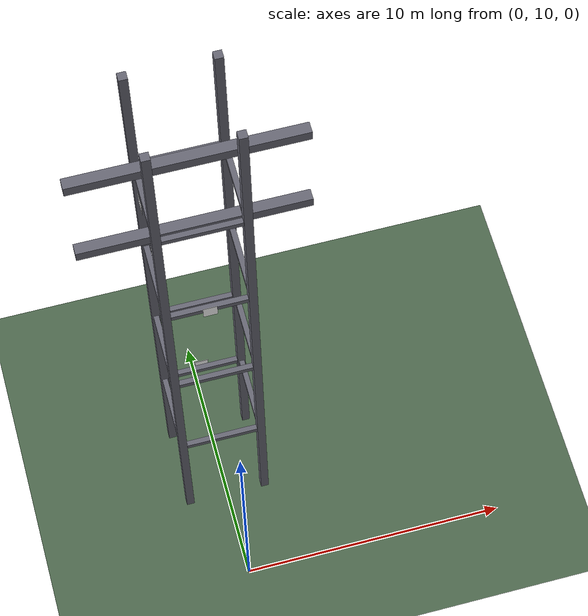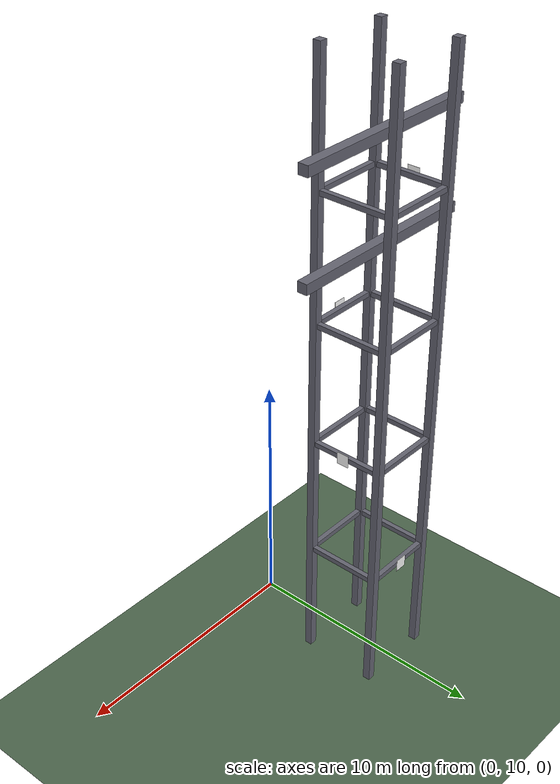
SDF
<sdf version="1.9">
 <world name="pylon_world">
  <physics name="1ms" type="ignore">
   <max_step_size>0.001</max_step_size>
   <real_time_factor>1.0</real_time_factor>
  </physics>
  <plugin filename="gz-sim-physics-system" name="gz::sim::systems::Physics"/>
  <plugin filename="gz-sim-sensors-system" name="gz::sim::systems::Sensors">
   <render_engine>ogre2</render_engine>
  </plugin>
  <plugin filename="gz-sim-user-commands-system" name="gz::sim::systems::UserCommands"/>
  <plugin filename="gz-sim-scene-broadcaster-system" name="gz::sim::systems::SceneBroadcaster"/>
  <plugin filename="gz-sim-imu-system" name="gz::sim::systems::Imu"/>
  <plugin filename="gz-sim-navsat-system" name="gz::sim::systems::NavSat"/>
  <scene><ambient>1.0 1.0 1.0</ambient><background>0.8 0.8 0.9</background></scene>
  <spherical_coordinates>
   <latitude_deg>-35.363262</latitude_deg>
   <longitude_deg>149.165237</longitude_deg>
   <elevation>584</elevation>
   <heading_deg>0</heading_deg>
   <surface_model>EARTH_WGS84</surface_model>
  </spherical_coordinates>
  <light type="directional" name="sun">
   <pose>0 0 10 0 0 0</pose>
   <diffuse>0.8 0.8 0.8 1</diffuse>
   <specular>0.8 0.8 0.8 1</specular>
   <attenuation>
    <range>1000</range>
    <constant>0.9</constant>
    <linear>0.01</linear>
    <quadratic>0.001</quadratic>
   </attenuation>
   <direction>-0.5 0.1 -0.9</direction>
  </light>
  <model name="ground_plane">
   <static>true</static>
   <link name="link">
    <collision name="collision">
     <geometry><plane><normal>0 0 1</normal><size>200 200</size></plane></geometry>
    </collision>
    <visual name="visual">
     <geometry><plane><normal>0 0 1</normal><size>200 200</size></plane></geometry>
     <material><ambient>0.3 0.4 0.3 1</ambient><diffuse>0.3 0.4 0.3 1</diffuse></material>
    </visual>
   </link>
  </model>
  <model name="pylon">
   <static>true</static>
   <pose>0 15 0 0 0 0</pose>
   <link name="frame">
    <collision name="leg_ne_col">
     <pose>1.5 1.5 12.5 0 0 0</pose>
     <geometry><box><size>0.3 0.3 25</size></box></geometry>
    </collision>
    <visual name="leg_ne_vis">
     <pose>1.5 1.5 12.5 0 0 0</pose>
     <geometry><box><size>0.3 0.3 25</size></box></geometry>
     <material><ambient>0.4 0.4 0.45 1</ambient><diffuse>0.4 0.4 0.45 1</diffuse></material>
    </visual>
    <collision name="leg_nw_col">
     <pose>-1.5 1.5 12.5 0 0 0</pose>
     <geometry><box><size>0.3 0.3 25</size></box></geometry>
    </collision>
    <visual name="leg_nw_vis">
     <pose>-1.5 1.5 12.5 0 0 0</pose>
     <geometry><box><size>0.3 0.3 25</size></box></geometry>
     <material><ambient>0.4 0.4 0.45 1</ambient><diffuse>0.4 0.4 0.45 1</diffuse></material>
    </visual>
    <collision name="leg_se_col">
     <pose>1.5 -1.5 12.5 0 0 0</pose>
     <geometry><box><size>0.3 0.3 25</size></box></geometry>
    </collision>
    <visual name="leg_se_vis">
     <pose>1.5 -1.5 12.5 0 0 0</pose>
     <geometry><box><size>0.3 0.3 25</size></box></geometry>
     <material><ambient>0.4 0.4 0.45 1</ambient><diffuse>0.4 0.4 0.45 1</diffuse></material>
    </visual>
    <collision name="leg_sw_col">
     <pose>-1.5 -1.5 12.5 0 0 0</pose>
     <geometry><box><size>0.3 0.3 25</size></box></geometry>
    </collision>
    <visual name="leg_sw_vis">
     <pose>-1.5 -1.5 12.5 0 0 0</pose>
     <geometry><box><size>0.3 0.3 25</size></box></geometry>
     <material><ambient>0.4 0.4 0.45 1</ambient><diffuse>0.4 0.4 0.45 1</diffuse></material>
    </visual>
    <collision name="brace_yp_5_col">
     <pose>0 1.5 5 0 0 0</pose>
     <geometry><box><size>3.0 0.2 0.2</size></box></geometry>
    </collision>
    <visual name="brace_yp_5_vis">
     <pose>0 1.5 5 0 0 0</pose>
     <geometry><box><size>3.0 0.2 0.2</size></box></geometry>
     <material><ambient>0.4 0.4 0.45 1</ambient><diffuse>0.4 0.4 0.45 1</diffuse></material>
    </visual>
    <collision name="brace_yn_5_col">
     <pose>0 -1.5 5 0 0 0</pose>
     <geometry><box><size>3.0 0.2 0.2</size></box></geometry>
    </collision>
    <visual name="brace_yn_5_vis">
     <pose>0 -1.5 5 0 0 0</pose>
     <geometry><box><size>3.0 0.2 0.2</size></box></geometry>
     <material><ambient>0.4 0.4 0.45 1</ambient><diffuse>0.4 0.4 0.45 1</diffuse></material>
    </visual>
    <collision name="brace_xp_5_col">
     <pose>1.5 0 5 0 0 0</pose>
     <geometry><box><size>0.2 3.0 0.2</size></box></geometry>
    </collision>
    <visual name="brace_xp_5_vis">
     <pose>1.5 0 5 0 0 0</pose>
     <geometry><box><size>0.2 3.0 0.2</size></box></geometry>
     <material><ambient>0.4 0.4 0.45 1</ambient><diffuse>0.4 0.4 0.45 1</diffuse></material>
    </visual>
    <collision name="brace_xn_5_col">
     <pose>-1.5 0 5 0 0 0</pose>
     <geometry><box><size>0.2 3.0 0.2</size></box></geometry>
    </collision>
    <visual name="brace_xn_5_vis">
     <pose>-1.5 0 5 0 0 0</pose>
     <geometry><box><size>0.2 3.0 0.2</size></box></geometry>
     <material><ambient>0.4 0.4 0.45 1</ambient><diffuse>0.4 0.4 0.45 1</diffuse></material>
    </visual>
    <collision name="brace_yp_10_col">
     <pose>0 1.5 10 0 0 0</pose>
     <geometry><box><size>3.0 0.2 0.2</size></box></geometry>
    </collision>
    <visual name="brace_yp_10_vis">
     <pose>0 1.5 10 0 0 0</pose>
     <geometry><box><size>3.0 0.2 0.2</size></box></geometry>
     <material><ambient>0.4 0.4 0.45 1</ambient><diffuse>0.4 0.4 0.45 1</diffuse></material>
    </visual>
    <collision name="brace_yn_10_col">
     <pose>0 -1.5 10 0 0 0</pose>
     <geometry><box><size>3.0 0.2 0.2</size></box></geometry>
    </collision>
    <visual name="brace_yn_10_vis">
     <pose>0 -1.5 10 0 0 0</pose>
     <geometry><box><size>3.0 0.2 0.2</size></box></geometry>
     <material><ambient>0.4 0.4 0.45 1</ambient><diffuse>0.4 0.4 0.45 1</diffuse></material>
    </visual>
    <collision name="brace_xp_10_col">
     <pose>1.5 0 10 0 0 0</pose>
     <geometry><box><size>0.2 3.0 0.2</size></box></geometry>
    </collision>
    <visual name="brace_xp_10_vis">
     <pose>1.5 0 10 0 0 0</pose>
     <geometry><box><size>0.2 3.0 0.2</size></box></geometry>
     <material><ambient>0.4 0.4 0.45 1</ambient><diffuse>0.4 0.4 0.45 1</diffuse></material>
    </visual>
    <collision name="brace_xn_10_col">
     <pose>-1.5 0 10 0 0 0</pose>
     <geometry><box><size>0.2 3.0 0.2</size></box></geometry>
    </collision>
    <visual name="brace_xn_10_vis">
     <pose>-1.5 0 10 0 0 0</pose>
     <geometry><box><size>0.2 3.0 0.2</size></box></geometry>
     <material><ambient>0.4 0.4 0.45 1</ambient><diffuse>0.4 0.4 0.45 1</diffuse></material>
    </visual>
    <collision name="brace_yp_15_col">
     <pose>0 1.5 15 0 0 0</pose>
     <geometry><box><size>3.0 0.2 0.2</size></box></geometry>
    </collision>
    <visual name="brace_yp_15_vis">
     <pose>0 1.5 15 0 0 0</pose>
     <geometry><box><size>3.0 0.2 0.2</size></box></geometry>
     <material><ambient>0.4 0.4 0.45 1</ambient><diffuse>0.4 0.4 0.45 1</diffuse></material>
    </visual>
    <collision name="brace_yn_15_col">
     <pose>0 -1.5 15 0 0 0</pose>
     <geometry><box><size>3.0 0.2 0.2</size></box></geometry>
    </collision>
    <visual name="brace_yn_15_vis">
     <pose>0 -1.5 15 0 0 0</pose>
     <geometry><box><size>3.0 0.2 0.2</size></box></geometry>
     <material><ambient>0.4 0.4 0.45 1</ambient><diffuse>0.4 0.4 0.45 1</diffuse></material>
    </visual>
    <collision name="brace_xp_15_col">
     <pose>1.5 0 15 0 0 0</pose>
     <geometry><box><size>0.2 3.0 0.2</size></box></geometry>
    </collision>
    <visual name="brace_xp_15_vis">
     <pose>1.5 0 15 0 0 0</pose>
     <geometry><box><size>0.2 3.0 0.2</size></box></geometry>
     <material><ambient>0.4 0.4 0.45 1</ambient><diffuse>0.4 0.4 0.45 1</diffuse></material>
    </visual>
    <collision name="brace_xn_15_col">
     <pose>-1.5 0 15 0 0 0</pose>
     <geometry><box><size>0.2 3.0 0.2</size></box></geometry>
    </collision>
    <visual name="brace_xn_15_vis">
     <pose>-1.5 0 15 0 0 0</pose>
     <geometry><box><size>0.2 3.0 0.2</size></box></geometry>
     <material><ambient>0.4 0.4 0.45 1</ambient><diffuse>0.4 0.4 0.45 1</diffuse></material>
    </visual>
    <collision name="brace_yp_20_col">
     <pose>0 1.5 20 0 0 0</pose>
     <geometry><box><size>3.0 0.2 0.2</size></box></geometry>
    </collision>
    <visual name="brace_yp_20_vis">
     <pose>0 1.5 20 0 0 0</pose>
     <geometry><box><size>3.0 0.2 0.2</size></box></geometry>
     <material><ambient>0.4 0.4 0.45 1</ambient><diffuse>0.4 0.4 0.45 1</diffuse></material>
    </visual>
    <collision name="brace_yn_20_col">
     <pose>0 -1.5 20 0 0 0</pose>
     <geometry><box><size>3.0 0.2 0.2</size></box></geometry>
    </collision>
    <visual name="brace_yn_20_vis">
     <pose>0 -1.5 20 0 0 0</pose>
     <geometry><box><size>3.0 0.2 0.2</size></box></geometry>
     <material><ambient>0.4 0.4 0.45 1</ambient><diffuse>0.4 0.4 0.45 1</diffuse></material>
    </visual>
    <collision name="brace_xp_20_col">
     <pose>1.5 0 20 0 0 0</pose>
     <geometry><box><size>0.2 3.0 0.2</size></box></geometry>
    </collision>
    <visual name="brace_xp_20_vis">
     <pose>1.5 0 20 0 0 0</pose>
     <geometry><box><size>0.2 3.0 0.2</size></box></geometry>
     <material><ambient>0.4 0.4 0.45 1</ambient><diffuse>0.4 0.4 0.45 1</diffuse></material>
    </visual>
    <collision name="brace_xn_20_col">
     <pose>-1.5 0 20 0 0 0</pose>
     <geometry><box><size>0.2 3.0 0.2</size></box></geometry>
    </collision>
    <visual name="brace_xn_20_vis">
     <pose>-1.5 0 20 0 0 0</pose>
     <geometry><box><size>0.2 3.0 0.2</size></box></geometry>
     <material><ambient>0.4 0.4 0.45 1</ambient><diffuse>0.4 0.4 0.45 1</diffuse></material>
    </visual>
    <collision name="arm_18_col">
     <pose>0 0 18 0 0 0</pose>
     <geometry><box><size>8.0 0.4 0.4</size></box></geometry>
    </collision>
    <visual name="arm_18_vis">
     <pose>0 0 18 0 0 0</pose>
     <geometry><box><size>8.0 0.4 0.4</size></box></geometry>
     <material><ambient>0.4 0.4 0.45 1</ambient><diffuse>0.4 0.4 0.45 1</diffuse></material>
    </visual>
    <collision name="arm_22_col">
     <pose>0 0 22 0 0 0</pose>
     <geometry><box><size>8.0 0.4 0.4</size></box></geometry>
    </collision>
    <visual name="arm_22_vis">
     <pose>0 0 22 0 0 0</pose>
     <geometry><box><size>8.0 0.4 0.4</size></box></geometry>
     <material><ambient>0.4 0.4 0.45 1</ambient><diffuse>0.4 0.4 0.45 1</diffuse></material>
    </visual>
   </link>
  </model>
  <include><uri>model://defect_marker</uri><pose>0 15 0 0 0 0</pose></include>
 </world>
</sdf>

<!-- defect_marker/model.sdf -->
<sdf version="1.9">
  <model name="defect_marker">
    <static>true</static>

    <!-- North face marker, box rotated so its flat face points north -->
    <link name="marker_0">
      <pose>0.0 1.66 5.0 -1.5708 0 0</pose>
      <visual name="marker_0_visual">
        <geometry>
          <box><size>0.5 0.5 0.01</size></box>
        </geometry>
        <material>
          <ambient>1 1 1 1</ambient>
          <diffuse>1 1 1 1</diffuse>
          <pbr>
            <metal>
              <albedo_map>marker_0.png</albedo_map>
            </metal>
          </pbr>
        </material>
      </visual>
    </link>

    <!-- East face marker, box rotated so its flat face points east -->
    <link name="marker_1">
      <pose>1.66 0.0 10.0 0 1.5708 0</pose>
      <visual name="marker_1_visual">
        <geometry>
          <box><size>0.5 0.5 0.01</size></box>
        </geometry>
        <material>
          <ambient>1 1 1 1</ambient>
          <diffuse>1 1 1 1</diffuse>
          <pbr>
            <metal>
              <albedo_map>marker_1.png</albedo_map>
            </metal>
          </pbr>
        </material>
      </visual>
    </link>

    <!-- South face marker, box rotated so its flat face points south -->
    <link name="marker_2">
      <pose>0.0 -1.66 15.0 1.5708 0 0</pose>
      <visual name="marker_2_visual">
        <geometry>
          <box><size>0.5 0.5 0.01</size></box>
        </geometry>
        <material>
          <ambient>1 1 1 1</ambient>
          <diffuse>1 1 1 1</diffuse>
          <pbr>
            <metal>
              <albedo_map>marker_2.png</albedo_map>
            </metal>
          </pbr>
        </material>
      </visual>
    </link>

    <!-- West face marker, box rotated so its flat face points west -->
    <link name="marker_3">
      <pose>-1.66 0.0 20.0 0 -1.5708 0</pose>
      <visual name="marker_3_visual">
        <geometry>
          <box><size>0.5 0.5 0.01</size></box>
        </geometry>
        <material>
          <ambient>1 1 1 1</ambient>
          <diffuse>1 1 1 1</diffuse>
          <pbr>
            <metal>
              <albedo_map>marker_3.png</albedo_map>
            </metal>
          </pbr>
        </material>
      </visual>
    </link>
  </model>
</sdf>
